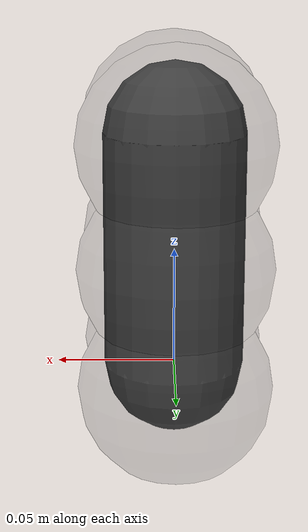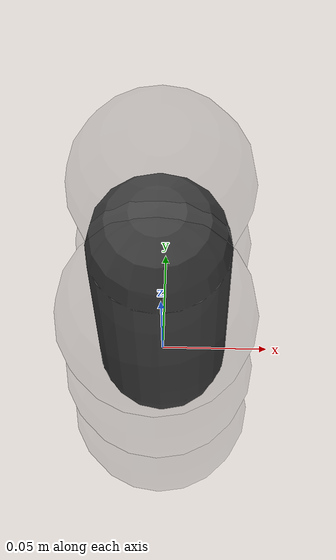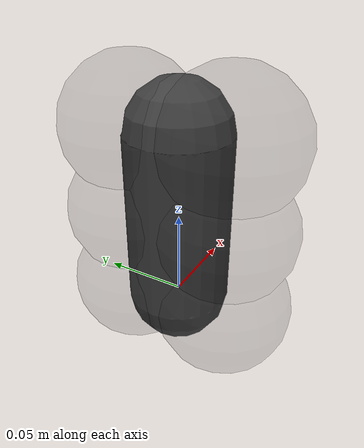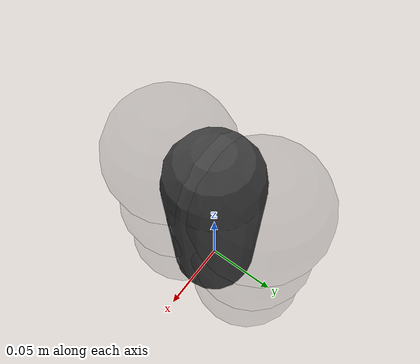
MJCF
<mujoco model="reach_hand">
    <worldbody>
        <body name="reach_gripper" pos="0 0 0.05" quat="1.0 0 0 0" >
            <site name="ft_frame" pos="0 0 0" size="0.01 0.01 0.01" rgba="1 0 0 1" type="sphere" group="1"/>
            <inertial pos="0 0 0" mass="3e-2" diaginertia="1e-2 1e-2 1e-2"/>

            <geom type="capsule" pos="0 0.0 0.0" size="0.03 0.05" name="reach_link" solimp="0.9 0.95 0.001 0.5 2" solmix="10000" solref="0.005 1" group="1" rgba="0.25 0.25 0.25 1" />

            <geom type="sphere" pos="0.0 0.03 0.05" size="0.04" name="sensor_corner1" group="1" rgba="0.25 0.25 0.25 0.1" gap="0.5"/>
            <geom type="sphere" pos="0.0 0.03 0.0" size="0.04" name="sensor_corner2" group="1" rgba="0.25 0.25 0.25 0.1" gap="0.5"/>
            <geom type="sphere" pos="0.0 0.03 -0.05" size="0.04" name="sensor_corner3" group="1" rgba="0.25 0.25 0.25 0.1" gap="0.5"/>
            <geom type="sphere" pos="0.0 -0.03 0.05" size="0.04" name="sensor_corner4" group="1" rgba="0.25 0.25 0.25 0.1" gap="0.5"/>
            <geom type="sphere" pos="0.0 -0.03 0.0" size="0.04" name="sensor_corner5" group="1" rgba="0.25 0.25 0.25 0.1" gap="0.5"/>
            <geom type="sphere" pos="0.0 -0.03 -0.05" size="0.04" name="sensor_corner6" group="1" rgba="0.25 0.25 0.25 0.1" gap="0.5"/>

            <site name="sensor_corner1" pos="0.0 0.03 0.05" size="0.04" rgba="0 0 0 0.0" type="sphere" group="1"/>
            <site name="sensor_corner2" pos="0.0 0.03 0.0" size="0.04" rgba="0 0 0 0.0" type="sphere" group="1"/>
            <site name="sensor_corner3" pos="0.0 0.03 -0.05" size="0.04" rgba="0 0 0 0.0" type="sphere" group="1"/>
            <site name="sensor_corner4" pos="0.0 -0.03 0.05" size="0.04" rgba="0 0 0 0.0" type="sphere" group="1"/>
            <site name="sensor_corner5" pos="0.0 -0.03 0.0" size="0.04" rgba="0 0 0 0.0" type="sphere" group="1"/>
            <site name="sensor_corner6" pos="0.0 -0.03 -0.05" size="0.04" rgba="0 0 0 0.0" type="sphere" group="1"/>

            <!-- This site was added for visualization. -->
            <body name="eef" pos="0 0 0.015" quat="1 0 0 0">
                <site name="grip_site" pos="0 0 0" size="0.01 0.01 0.01" rgba="1 0 0 0.5" type="sphere" group="1"/>
                <site name="ee_x" pos="0.1 0 0" size="0.005 .1"  quat="0.707105  0 0.707108 0 " rgba="1 0 0 0" type="cylinder" group="1"/>
                <site name="ee_y" pos="0 0.1 0" size="0.005 .1" quat="0.707105 0.707108 0 0" rgba="0 1 0 0" type="cylinder" group="1"/>
                <site name="ee_z" pos="0 0 0.1" size="0.005 .1" quat="1 0 0 0" rgba="0 0 1 0" type="cylinder" group="1"/>
                <!-- This site was added for visualization. -->
                <site name="grip_site_cylinder" pos="0 0 0" size="0.005 10" rgba="0 0 1 0.0" type="cylinder" group="1"/>
            </body>
        </body>
    </worldbody>
    <sensor>
        <force name="force_ee" site="ft_frame"/>
        <torque name="torque_ee" site="ft_frame"/>
    </sensor>
</mujoco>
